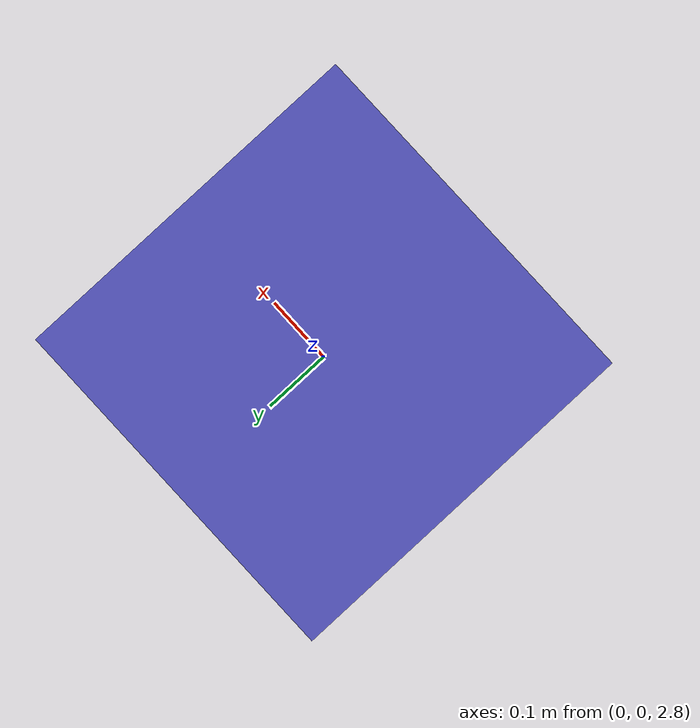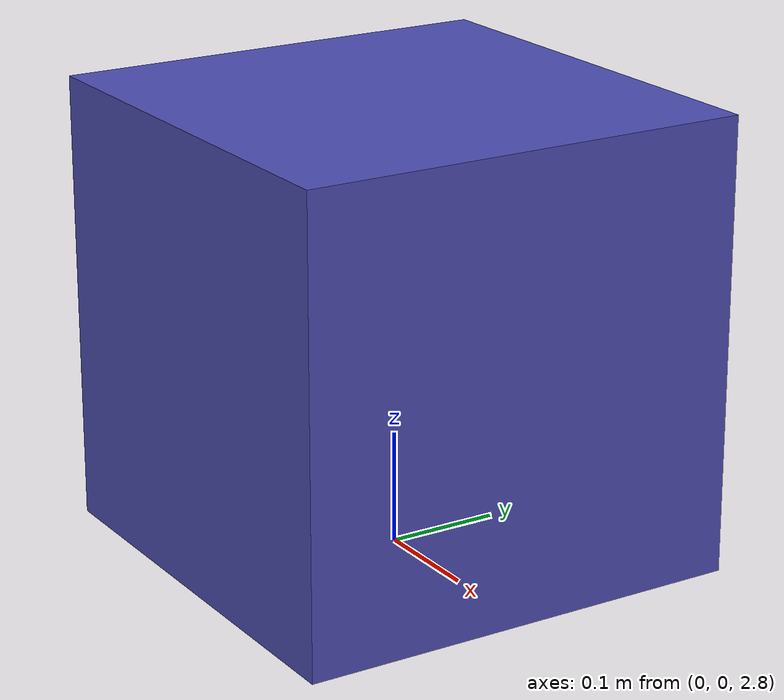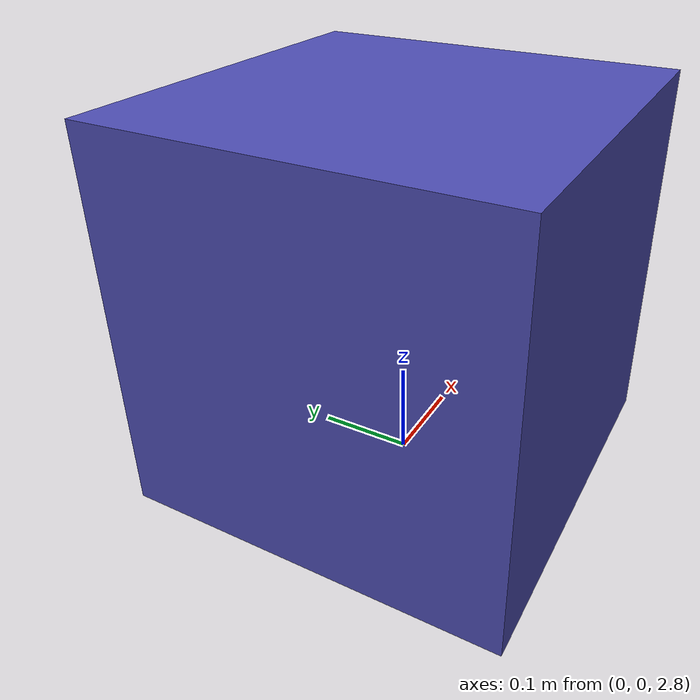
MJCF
<mujoco model="a1 scene">

  <include file="satellite.xml"/>

  <statistic center="1 -3 3" extent="0.8"/>

  <visual>
    <headlight diffuse="0.6 0.6 0.6" ambient="0.3 0.3 0.3" specular="0 0 0"/>
    <rgba haze="0.15 0.25 0.35 1"/>
    <global azimuth="120" elevation="-20"/>
  </visual>

  <asset>
    <texture type="skybox" builtin="gradient" rgb1="0.3 0.5 0.7" rgb2="0 0 0" width="512" height="3072"/>
    <texture type="2d" name="groundplane" builtin="checker" mark="edge" rgb1="0.2 0.3 0.4" rgb2="0.1 0.2 0.3"
      markrgb="0.8 0.8 0.8" width="300" height="300"/>
    <material name="groundplane" texture="groundplane" texuniform="true" texrepeat="5 5" reflectance="0.2"/>
  </asset>

  <worldbody>
    <light pos="0 0 1.5" dir="0 0 -1" directional="true"/>
    <geom name="floor" size="0 0 0.05" type="plane" material="groundplane"/>
  </worldbody>

</mujoco>

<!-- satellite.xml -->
<mujoco model="satellite">
	<compiler inertiafromgeom="true"/>
	<default>
		<joint armature="0" damping="0.000001" limited="true"/>
		<geom contype="0" friction="0.0000001 0 0" rgba="0.7 0.7 0 1"/>
		<tendon/>
		<motor ctrlrange="-100 100"/>
	</default>

	<option gravity="0 0 0" integrator="RK4" timestep="0.001"/>

	<worldbody>

		<body name="satellite" pos="0 0 3">
		<geom name="satellite" pos="0 0 0" quat="0.707 0 0.707 0" rgba="0.3 0.3 0.7 1" size="0.2 0.2 0.2" type="box" mass = "5"/>
		<site name="quat" pos="0 0 0" rgba="1 0 0 1" size="0.2 " type = "sphere"/>
				<joint limited="auto" name="tau"  type="free"/>
		</body>
	</worldbody>

	<actuator>
				<motor joint="tau" gear = "1 0 0 0 0 0"/>
				<motor joint="tau" gear = "0 1 0 0 0 0"/>
						<motor joint="tau" gear = "0 0 1 0 0 0"/>

		<motor joint="tau" gear = "0 0 0 1 0 0"/>
				<motor joint="tau" gear = "0 0 0 0 1 0"/>
						<motor joint="tau" gear = "0 0 0 0 0 1"/>

	</actuator>

	<sensor>
		<framequat name="world_quat" objtype="site" objname="quat" noise="0.003" />
		<frameangvel name="world_angvel" objtype="site" objname="quat" noise="0.003" />
	</sensor>

</mujoco>
